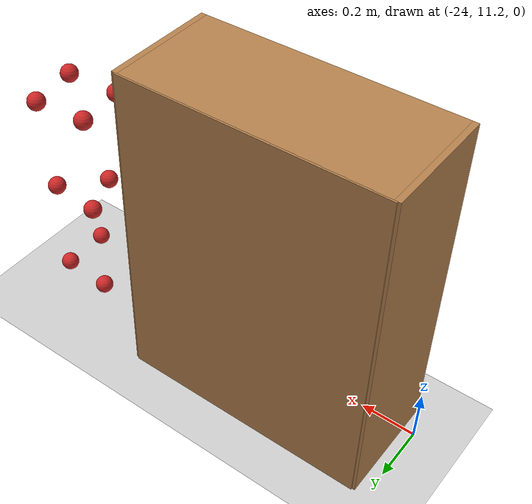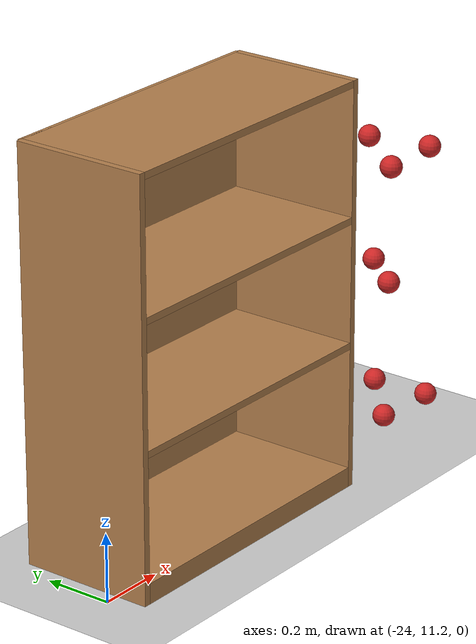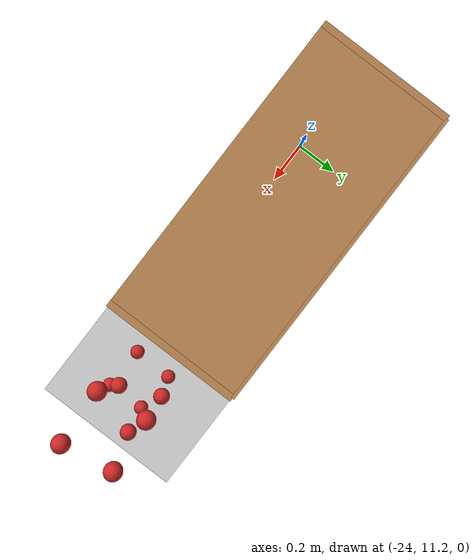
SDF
<sdf version="1.7">
 <world name="default">
  <model name="ground_plane">
   <static>1</static>
   <link name="link">
    <collision name="collision">
     <geometry><plane><normal>0 0 1</normal><size>100 100</size></plane></geometry>
     <surface>
      <contact><collide_bitmask>65535</collide_bitmask></contact>
      <friction><ode><mu>100</mu><mu2>50</mu2></ode></friction>
     </surface>
    </collision>
    <visual name="visual">
     <cast_shadows>0</cast_shadows>
     <geometry><plane><normal>0 0 1</normal><size>100 100</size></plane></geometry>
     <material>
      <script><uri>file://media/materials/scripts/gazebo.material</uri><name>Gazebo/Grey</name></script>
     </material>
    </visual>
   </link>
  </model>
  <model name="bookshelf_clone_3">
   <static>1</static>
   <link name="link">
    <inertial><mass>1</mass></inertial>
    <collision name="back">
     <pose>0 0.005 0.6 0 -0 0</pose>
     <geometry><box><size>0.9 0.01 1.2</size></box></geometry>
    </collision>
    <visual name="visual1">
     <pose>0 0.005 0.6 0 -0 0</pose>
     <geometry><box><size>0.9 0.01 1.2</size></box></geometry>
     <material>
      <script><uri>file://media/materials/scripts/gazebo.material</uri><name>Gazebo/Wood</name></script>
     </material>
    </visual>
    <collision name="left_side">
     <pose>0.45 -0.195 0.6 0 -0 0</pose>
     <geometry><box><size>0.02 0.4 1.2</size></box></geometry>
    </collision>
    <visual name="visual2">
     <pose>0.45 -0.195 0.6 0 -0 0</pose>
     <geometry><box><size>0.02 0.4 1.2</size></box></geometry>
     <material>
      <script><uri>file://media/materials/scripts/gazebo.material</uri><name>Gazebo/Wood</name></script>
     </material>
    </visual>
    <collision name="right_side">
     <pose>-0.45 -0.195 0.6 0 -0 0</pose>
     <geometry><box><size>0.02 0.4 1.2</size></box></geometry>
    </collision>
    <visual name="visual3">
     <pose>-0.45 -0.195 0.6 0 -0 0</pose>
     <geometry><box><size>0.02 0.4 1.2</size></box></geometry>
     <material>
      <script><uri>file://media/materials/scripts/gazebo.material</uri><name>Gazebo/Wood</name></script>
     </material>
    </visual>
    <collision name="bottom">
     <pose>0 -0.195 0.03 0 -0 0</pose>
     <geometry><box><size>0.88 0.4 0.06</size></box></geometry>
    </collision>
    <visual name="visual4">
     <pose>0 -0.195 0.03 0 -0 0</pose>
     <geometry><box><size>0.88 0.4 0.06</size></box></geometry>
     <material>
      <script><uri>file://media/materials/scripts/gazebo.material</uri><name>Gazebo/Wood</name></script>
     </material>
    </visual>
    <collision name="top">
     <pose>0 -0.195 1.19 0 -0 0</pose>
     <geometry><box><size>0.88 0.4 0.02</size></box></geometry>
    </collision>
    <visual name="visual5">
     <pose>0 -0.195 1.19 0 -0 0</pose>
     <geometry><box><size>0.88 0.4 0.02</size></box></geometry>
     <material>
      <script><uri>file://media/materials/scripts/gazebo.material</uri><name>Gazebo/Wood</name></script>
     </material>
    </visual>
    <collision name="low_shelf">
     <pose>0 -0.195 0.43 0 -0 0</pose>
     <geometry><box><size>0.88 0.4 0.02</size></box></geometry>
    </collision>
    <visual name="visual6">
     <pose>0 -0.195 0.43 0 -0 0</pose>
     <geometry><box><size>0.88 0.4 0.02</size></box></geometry>
     <material>
      <script><uri>file://media/materials/scripts/gazebo.material</uri><name>Gazebo/Wood</name></script>
     </material>
    </visual>
    <collision name="high_shelf">
     <pose>0 -0.195 0.8 0 -0 0</pose>
     <geometry><box><size>0.88 0.4 0.02</size></box></geometry>
    </collision>
    <visual name="visual7">
     <pose>0 -0.195 0.8 0 -0 0</pose>
     <geometry><box><size>0.88 0.4 0.02</size></box></geometry>
     <material>
      <script><uri>file://media/materials/scripts/gazebo.material</uri><name>Gazebo/Wood</name></script>
     </material>
    </visual>
   </link>
   <pose>-23.5 11.5 0 0 -0 0</pose>
  </model>
  <model name="RoboCup SPL Ball_clone_clone_2_clone_0_clone">
   <static>0</static>
   <link name="ball">
    <inertial>
     <mass>0.0056</mass>
     <inertia>
      <ixx>2.37e-06</ixx>
      <iyy>2.37e-06</iyy>
      <izz>2.37e-06</izz>
      <ixy>0</ixy>
      <ixz>0</ixz>
      <iyz>0</iyz>
     </inertia>
    </inertial>
    <collision name="collision"><geometry><sphere><radius>0.0325</radius></sphere></geometry></collision>
    <visual name="visual">
     <geometry><sphere><radius>0.0325</radius></sphere></geometry>
     <material>
      <script><uri>file://media/materials/scripts/gazebo.material</uri><name>Gazebo/RedBright</name></script>
     </material>
    </visual>
   </link>
   <pose>-22.7669 11.3795 0.8425 0.062088 -0 0</pose>
  </model>
  <model name="RoboCup SPL Ball_clone_clone_2_clone_0_clone_0">
   <static>0</static>
   <link name="ball">
    <inertial>
     <mass>0.0056</mass>
     <inertia>
      <ixx>2.37e-06</ixx>
      <iyy>2.37e-06</iyy>
      <izz>2.37e-06</izz>
      <ixy>0</ixy>
      <ixz>0</ixz>
      <iyz>0</iyz>
     </inertia>
    </inertial>
    <collision name="collision"><geometry><sphere><radius>0.0325</radius></sphere></geometry></collision>
    <visual name="visual">
     <geometry><sphere><radius>0.0325</radius></sphere></geometry>
     <material>
      <script><uri>file://media/materials/scripts/gazebo.material</uri><name>Gazebo/RedBright</name></script>
     </material>
    </visual>
   </link>
   <pose>-22.571 11.3958 0.8425 0.062088 -0 0</pose>
  </model>
  <model name="RoboCup SPL Ball_clone_clone_2_clone_0_clone_5">
   <static>0</static>
   <link name="ball">
    <inertial>
     <mass>0.0056</mass>
     <inertia>
      <ixx>2.37e-06</ixx>
      <iyy>2.37e-06</iyy>
      <izz>2.37e-06</izz>
      <ixy>0</ixy>
      <ixz>0</ixz>
      <iyz>0</iyz>
     </inertia>
    </inertial>
    <collision name="collision"><geometry><sphere><radius>0.0325</radius></sphere></geometry></collision>
    <visual name="visual">
     <geometry><sphere><radius>0.0325</radius></sphere></geometry>
     <material>
      <script><uri>file://media/materials/scripts/gazebo.material</uri><name>Gazebo/RedBright</name></script>
     </material>
    </visual>
   </link>
   <pose>-22.5392 11.2081 0.8425 0.062088 -0 0</pose>
  </model>
  <model name="RoboCup SPL Ball_clone_clone_2_clone_0_clone_6">
   <static>0</static>
   <link name="ball">
    <inertial>
     <mass>0.0056</mass>
     <inertia>
      <ixx>2.37e-06</ixx>
      <iyy>2.37e-06</iyy>
      <izz>2.37e-06</izz>
      <ixy>0</ixy>
      <ixz>0</ixz>
      <iyz>0</iyz>
     </inertia>
    </inertial>
    <collision name="collision"><geometry><sphere><radius>0.0325</radius></sphere></geometry></collision>
    <visual name="visual">
     <geometry><sphere><radius>0.0325</radius></sphere></geometry>
     <material>
      <script><uri>file://media/materials/scripts/gazebo.material</uri><name>Gazebo/RedBright</name></script>
     </material>
    </visual>
   </link>
   <pose>-22.7441 11.1975 0.8425 0.062088 -0 0</pose>
  </model>
  <model name="RoboCup SPL Ball_clone_clone_4">
   <static>0</static>
   <link name="ball">
    <inertial>
     <mass>0.0056</mass>
     <inertia>
      <ixx>2.37e-06</ixx>
      <iyy>2.37e-06</iyy>
      <izz>2.37e-06</izz>
      <ixy>0</ixy>
      <ixz>0</ixz>
      <iyz>0</iyz>
     </inertia>
    </inertial>
    <collision name="collision"><geometry><sphere><radius>0.0325</radius></sphere></geometry></collision>
    <visual name="visual">
     <geometry><sphere><radius>0.0325</radius></sphere></geometry>
     <material>
      <script><uri>file://media/materials/scripts/gazebo.material</uri><name>Gazebo/RedBright</name></script>
     </material>
    </visual>
   </link>
   <pose>-22.7684 11.3859 0.4725 0.062088 -0 0</pose>
  </model>
  <model name="RoboCup SPL Ball_clone_clone_5">
   <static>0</static>
   <link name="ball">
    <inertial>
     <mass>0.0056</mass>
     <inertia>
      <ixx>2.37e-06</ixx>
      <iyy>2.37e-06</iyy>
      <izz>2.37e-06</izz>
      <ixy>0</ixy>
      <ixz>0</ixz>
      <iyz>0</iyz>
     </inertia>
    </inertial>
    <collision name="collision"><geometry><sphere><radius>0.0325</radius></sphere></geometry></collision>
    <visual name="visual">
     <geometry><sphere><radius>0.0325</radius></sphere></geometry>
     <material>
      <script><uri>file://media/materials/scripts/gazebo.material</uri><name>Gazebo/RedBright</name></script>
     </material>
    </visual>
   </link>
   <pose>-22.5789 11.3678 0.4725 0.062088 -0 0</pose>
  </model>
  <model name="RoboCup SPL Ball_clone_clone_10">
   <static>0</static>
   <link name="ball">
    <inertial>
     <mass>0.0056</mass>
     <inertia>
      <ixx>2.37e-06</ixx>
      <iyy>2.37e-06</iyy>
      <izz>2.37e-06</izz>
      <ixy>0</ixy>
      <ixz>0</ixz>
      <iyz>0</iyz>
     </inertia>
    </inertial>
    <collision name="collision"><geometry><sphere><radius>0.0325</radius></sphere></geometry></collision>
    <visual name="visual">
     <geometry><sphere><radius>0.0325</radius></sphere></geometry>
     <material>
      <script><uri>file://media/materials/scripts/gazebo.material</uri><name>Gazebo/RedBright</name></script>
     </material>
    </visual>
   </link>
   <pose>-22.7008 11.2287 0.4725 0.062088 -0 0</pose>
  </model>
  <model name="RoboCup SPL Ball_clone_1_clone">
   <static>0</static>
   <link name="ball">
    <inertial>
     <mass>0.0056</mass>
     <inertia>
      <ixx>2.37e-06</ixx>
      <iyy>2.37e-06</iyy>
      <izz>2.37e-06</izz>
      <ixy>0</ixy>
      <ixz>0</ixz>
      <iyz>0</iyz>
     </inertia>
    </inertial>
    <collision name="collision"><geometry><sphere><radius>0.0325</radius></sphere></geometry></collision>
    <visual name="visual">
     <geometry><sphere><radius>0.0325</radius></sphere></geometry>
     <material>
      <script><uri>file://media/materials/scripts/gazebo.material</uri><name>Gazebo/RedBright</name></script>
     </material>
    </visual>
   </link>
   <pose>-22.7665 11.3702 0.0925 0.062087 -0 0</pose>
  </model>
  <model name="RoboCup SPL Ball_clone_1_clone_0">
   <static>0</static>
   <link name="ball">
    <inertial>
     <mass>0.0056</mass>
     <inertia>
      <ixx>2.37e-06</ixx>
      <iyy>2.37e-06</iyy>
      <izz>2.37e-06</izz>
      <ixy>0</ixy>
      <ixz>0</ixz>
      <iyz>0</iyz>
     </inertia>
    </inertial>
    <collision name="collision"><geometry><sphere><radius>0.0325</radius></sphere></geometry></collision>
    <visual name="visual">
     <geometry><sphere><radius>0.0325</radius></sphere></geometry>
     <material>
      <script><uri>file://media/materials/scripts/gazebo.material</uri><name>Gazebo/RedBright</name></script>
     </material>
    </visual>
   </link>
   <pose>-22.5785 11.3576 0.0925 0.062087 -0 0</pose>
  </model>
  <model name="RoboCup SPL Ball_clone_1_clone_5">
   <static>0</static>
   <link name="ball">
    <inertial>
     <mass>0.0056</mass>
     <inertia>
      <ixx>2.37e-06</ixx>
      <iyy>2.37e-06</iyy>
      <izz>2.37e-06</izz>
      <ixy>0</ixy>
      <ixz>0</ixz>
      <iyz>0</iyz>
     </inertia>
    </inertial>
    <collision name="collision"><geometry><sphere><radius>0.0325</radius></sphere></geometry></collision>
    <visual name="visual">
     <geometry><sphere><radius>0.0325</radius></sphere></geometry>
     <material>
      <script><uri>file://media/materials/scripts/gazebo.material</uri><name>Gazebo/RedBright</name></script>
     </material>
    </visual>
   </link>
   <pose>-22.5732 11.1796 0.0925 0.062087 -0 0</pose>
  </model>
  <model name="RoboCup SPL Ball_clone_1_clone_6">
   <static>0</static>
   <link name="ball">
    <inertial>
     <mass>0.0056</mass>
     <inertia>
      <ixx>2.37e-06</ixx>
      <iyy>2.37e-06</iyy>
      <izz>2.37e-06</izz>
      <ixy>0</ixy>
      <ixz>0</ixz>
      <iyz>0</iyz>
     </inertia>
    </inertial>
    <collision name="collision"><geometry><sphere><radius>0.0325</radius></sphere></geometry></collision>
    <visual name="visual">
     <geometry><sphere><radius>0.0325</radius></sphere></geometry>
     <material>
      <script><uri>file://media/materials/scripts/gazebo.material</uri><name>Gazebo/RedBright</name></script>
     </material>
    </visual>
   </link>
   <pose>-22.7707 11.1888 0.0925 0.062087 -0 0</pose>
  </model>
 </world>
</sdf>
